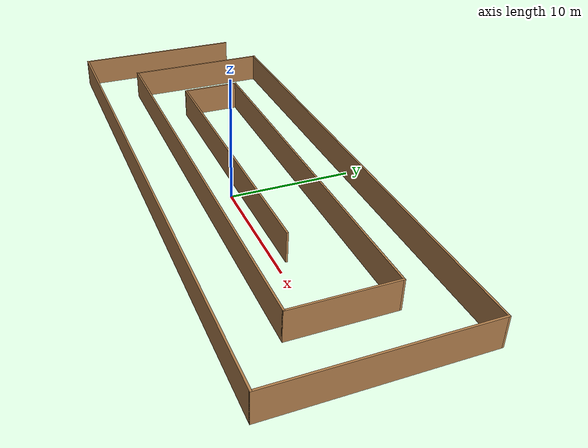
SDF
<?xml version='1.0'?>
<sdf version='1.7'>
  <model name='wall_test'>
    <pose>-1.86122 1.60723 0 0 -0 0</pose>
    <link name='Wall_10'>
      <collision name='Wall_10_Collision'>
        <geometry>
          <box>
            <size>14.75 0.15 2.5</size>
          </box>
        </geometry>
        <pose>0 0 1.25 0 -0 0</pose>
      </collision>
      <visual name='Wall_10_Visual'>
        <pose>0 0 1.25 0 -0 0</pose>
        <geometry>
          <box>
            <size>14.75 0.15 2.5</size>
          </box>
        </geometry>
        <material>
          <script>
            <uri>file://media/materials/scripts/gazebo.material</uri>
            <name>Gazebo/Wood</name>
          </script>
          <ambient>1 1 1 1</ambient>
        </material>
        <meta>
          <layer>0</layer>
        </meta>
      </visual>
      <pose>-22.8 -0.75 0 0 -0 -1.5708</pose>
    </link>
    <link name='Wall_11'>
      <collision name='Wall_11_Collision'>
        <geometry>
          <box>
            <size>45.75 0.15 2.5</size>
          </box>
        </geometry>
        <pose>0 0 1.25 0 -0 0</pose>
      </collision>
      <visual name='Wall_11_Visual'>
        <pose>0 0 1.25 0 -0 0</pose>
        <geometry>
          <box>
            <size>45.75 0.15 2.5</size>
          </box>
        </geometry>
        <material>
          <script>
            <uri>file://media/materials/scripts/gazebo.material</uri>
            <name>Gazebo/Wood</name>
          </script>
          <ambient>1 1 1 1</ambient>
        </material>
        <meta>
          <layer>0</layer>
        </meta>
      </visual>
      <pose>-0 -8.05 0 0 -0 0</pose>
    </link>
    <link name='Wall_12'>
      <collision name='Wall_12_Collision'>
        <geometry>
          <box>
            <size>16.25 0.15 2.5</size>
          </box>
        </geometry>
        <pose>0 0 1.25 0 -0 0</pose>
      </collision>
      <visual name='Wall_12_Visual'>
        <pose>0 0 1.25 0 -0 0</pose>
        <geometry>
          <box>
            <size>16.25 0.15 2.5</size>
          </box>
        </geometry>
        <material>
          <script>
            <uri>file://media/materials/scripts/gazebo.material</uri>
            <name>Gazebo/Wood</name>
          </script>
          <ambient>1 1 1 1</ambient>
        </material>
        <meta>
          <layer>0</layer>
        </meta>
      </visual>
      <pose>22.8 0 0 0 -0 1.5708</pose>
    </link>
    <link name='Wall_13'>
      <collision name='Wall_13_Collision'>
        <geometry>
          <box>
            <size>41.25 0.15 2.5</size>
          </box>
        </geometry>
        <pose>0 0 1.25 0 -0 0</pose>
      </collision>
      <visual name='Wall_13_Visual'>
        <pose>0 0 1.25 0 -0 0</pose>
        <geometry>
          <box>
            <size>41.25 0.15 2.5</size>
          </box>
        </geometry>
        <material>
          <script>
            <uri>file://media/materials/scripts/gazebo.material</uri>
            <name>Gazebo/Wood</name>
          </script>
          <ambient>1 1 1 1</ambient>
        </material>
        <meta>
          <layer>0</layer>
        </meta>
      </visual>
      <pose>2.25 8.05 0 0 -0 3.14159</pose>
    </link>
    <link name='Wall_14'>
      <collision name='Wall_14_Collision'>
        <geometry>
          <box>
            <size>12.25 0.15 2.5</size>
          </box>
        </geometry>
        <pose>0 0 1.25 0 -0 0</pose>
      </collision>
      <visual name='Wall_14_Visual'>
        <pose>0 0 1.25 0 -0 0</pose>
        <geometry>
          <box>
            <size>12.25 0.15 2.5</size>
          </box>
        </geometry>
        <material>
          <script>
            <uri>file://media/materials/scripts/gazebo.material</uri>
            <name>Gazebo/Wood</name>
          </script>
          <ambient>1 1 1 1</ambient>
        </material>
        <meta>
          <layer>0</layer>
        </meta>
      </visual>
      <pose>-18.3 2 0 0 -0 -1.5708</pose>
    </link>
    <link name='Wall_15'>
      <collision name='Wall_15_Collision'>
        <geometry>
          <box>
            <size>36.25 0.15 2.5</size>
          </box>
        </geometry>
        <pose>0 0 1.25 0 -0 0</pose>
      </collision>
      <visual name='Wall_15_Visual'>
        <pose>0 0 1.25 0 -0 0</pose>
        <geometry>
          <box>
            <size>36.25 0.15 2.5</size>
          </box>
        </geometry>
        <material>
          <script>
            <uri>file://media/materials/scripts/gazebo.material</uri>
            <name>Gazebo/Wood</name>
          </script>
          <ambient>1 1 1 1</ambient>
        </material>
        <meta>
          <layer>0</layer>
        </meta>
      </visual>
      <pose>-0.25 -4.05 0 0 -0 0</pose>
    </link>
    <link name='Wall_16'>
      <collision name='Wall_16_Collision'>
        <geometry>
          <box>
            <size>8.25 0.15 2.5</size>
          </box>
        </geometry>
        <pose>0 0 1.25 0 -0 0</pose>
      </collision>
      <visual name='Wall_16_Visual'>
        <pose>0 0 1.25 0 -0 0</pose>
        <geometry>
          <box>
            <size>8.25 0.15 2.5</size>
          </box>
        </geometry>
        <material>
          <script>
            <uri>file://media/materials/scripts/gazebo.material</uri>
            <name>Gazebo/Wood</name>
          </script>
          <ambient>1 1 1 1</ambient>
        </material>
        <meta>
          <layer>0</layer>
        </meta>
      </visual>
      <pose>17.8 0 0 0 -0 1.5708</pose>
    </link>
    <link name='Wall_17'>
      <collision name='Wall_17_Collision'>
        <geometry>
          <box>
            <size>30.75 0.15 2.5</size>
          </box>
        </geometry>
        <pose>0 0 1.25 0 -0 0</pose>
      </collision>
      <visual name='Wall_17_Visual'>
        <pose>0 0 1.25 0 -0 0</pose>
        <geometry>
          <box>
            <size>30.75 0.15 2.5</size>
          </box>
        </geometry>
        <material>
          <script>
            <uri>file://media/materials/scripts/gazebo.material</uri>
            <name>Gazebo/Wood</name>
          </script>
          <ambient>1 1 1 1</ambient>
        </material>
        <meta>
          <layer>0</layer>
        </meta>
      </visual>
      <pose>2.5 4.05 0 0 -0 3.14159</pose>
    </link>
    <link name='Wall_18'>
      <collision name='Wall_18_Collision'>
        <geometry>
          <box>
            <size>5 0.15 2.5</size>
          </box>
        </geometry>
        <pose>0 0 1.25 0 -0 0</pose>
      </collision>
      <visual name='Wall_18_Visual'>
        <pose>0 0 1.25 0 -0 0</pose>
        <geometry>
          <box>
            <size>5 0.15 2.5</size>
          </box>
        </geometry>
        <material>
          <script>
            <uri>file://media/materials/scripts/gazebo.material</uri>
            <name>Gazebo/Wood</name>
          </script>
          <ambient>1 1 1 1</ambient>
        </material>
        <meta>
          <layer>0</layer>
        </meta>
      </visual>
      <pose>-12.8 1.625 0 0 -0 -1.5708</pose>
    </link>
    <link name='Wall_19'>
      <collision name='Wall_19_Collision'>
        <geometry>
          <box>
            <size>23.75 0.15 2.5</size>
          </box>
        </geometry>
        <pose>0 0 1.25 0 -0 0</pose>
      </collision>
      <visual name='Wall_19_Visual'>
        <pose>0 0 1.25 0 -0 0</pose>
        <geometry>
          <box>
            <size>23.75 0.15 2.5</size>
          </box>
        </geometry>
        <material>
          <script>
            <uri>file://media/materials/scripts/gazebo.material</uri>
            <name>Gazebo/Wood</name>
          </script>
          <ambient>1 1 1 1</ambient>
        </material>
        <meta>
          <layer>0</layer>
        </meta>
      </visual>
      <pose>-1 -0.8 0 0 -0 0</pose>
    </link>
    <static>1</static>
  </model>
</sdf>
